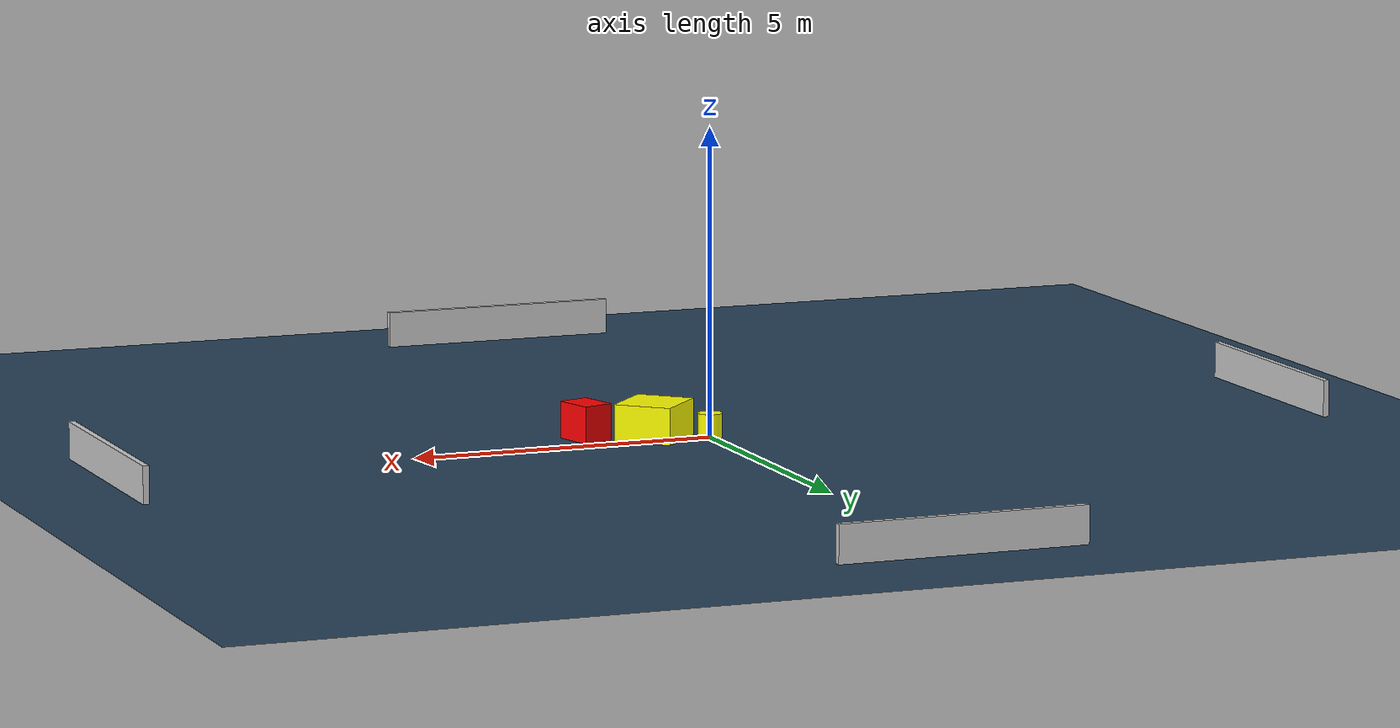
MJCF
<?xml version="1.0" ?>
<mujoco model="generated_environment">
  <option timestep="0.01" integrator="RK4" cone="elliptic"/>
  <default>
    <geom density="1"/>
  </default>
  <asset>
    <texture builtin="gradient" height="3072" name="skybox" rgb1="0.3 0.5 0.7" rgb2="0 0 0" type="skybox" width="512"/>
    <texture builtin="checker" height="300" name="groundplane" rgb1="0.2 0.3 0.4" rgb2="0.1 0.2 0.3" type="2d" width="300"/>
    <material name="groundplane" reflectance="0.2" texrepeat="5 5" texture="groundplane"/>
  </asset>
  <worldbody>
    <light dir="0 0 -1" directional="true" pos="0 0 1.5"/>
    <geom condim="3" friction="0.5 0.005 0.001" material="groundplane" name="floor" pos="0 0 0" size="0 0 0.05" type="plane"/>
    <body name="walls">
      <geom name="wall_1" condim="4" pos="-10.0 0.0 0.3" rgba="0.800000011920929 0.800000011920929 0.800000011920929 1.0" size="0.05 2.0 0.3" type="box"/>
      <geom name="wall_2" condim="4" pos="10.0 0.0 0.3" rgba="0.800000011920929 0.800000011920929 0.800000011920929 1.0" size="0.05 2.0 0.3" type="box"/>
      <geom name="wall_3" condim="4" pos="0.0 -10.0 0.3" rgba="0.800000011920929 0.800000011920929 0.800000011920929 1.0" size="2.0 0.05 0.3" type="box"/>
      <geom name="wall_4" condim="4" pos="0.0 10.0 0.3" rgba="0.800000011920929 0.800000011920929 0.800000011920929 1.0" size="2.0 0.05 0.3" type="box"/>
    </body>
    <body name="robot">
      <joint name="joint_x" type="slide" pos="0 0 0" axis="1 0 0"/>
      <joint name="joint_y" type="slide" pos="0 0 0" axis="0 1 0"/>
      <geom name="robot" type="cylinder" pos="0.0 0.0 0.2" size="0.2 0.2 0.0" mass="5.0" friction="1.0 0.005 0.0001" condim="4" rgba="1.0 1.0 0.0 1.0"/>
    </body>
    <body name="obstacle_1_movable">
      <geom name="obstacle_1_movable" condim="4" pos="0.8585874947939713 -0.266892742780882 0.3" euler="0 0 316.9052528415257" friction="0.0 0.005 0.001" rgba="1.0 1.0 0.0 1.0" size="0.4795584262699932 0.5111521864569151 0.3" type="box" mass="0.1"/>
      <joint type="free"/>
    </body>
    <body name="obstacle_2_static">
      <geom name="obstacle_2_static" condim="4" pos="1.9062544188534714 -0.5768275860278016 0.3" euler="0 0 285.88123829963064" friction="0.0 0.005 0.001" rgba="1.0 0.0 0.0 1.0" size="0.33866754541458144 0.2564907024241463 0.3" type="box"/>
    </body>
  </worldbody>
  <actuator>
    <motor name="actuator_x" joint="joint_x" gear="1" ctrlrange="-1 1"/>
    <motor name="actuator_y" joint="joint_y" gear="1" ctrlrange="-1 1"/>
  </actuator>
</mujoco>
